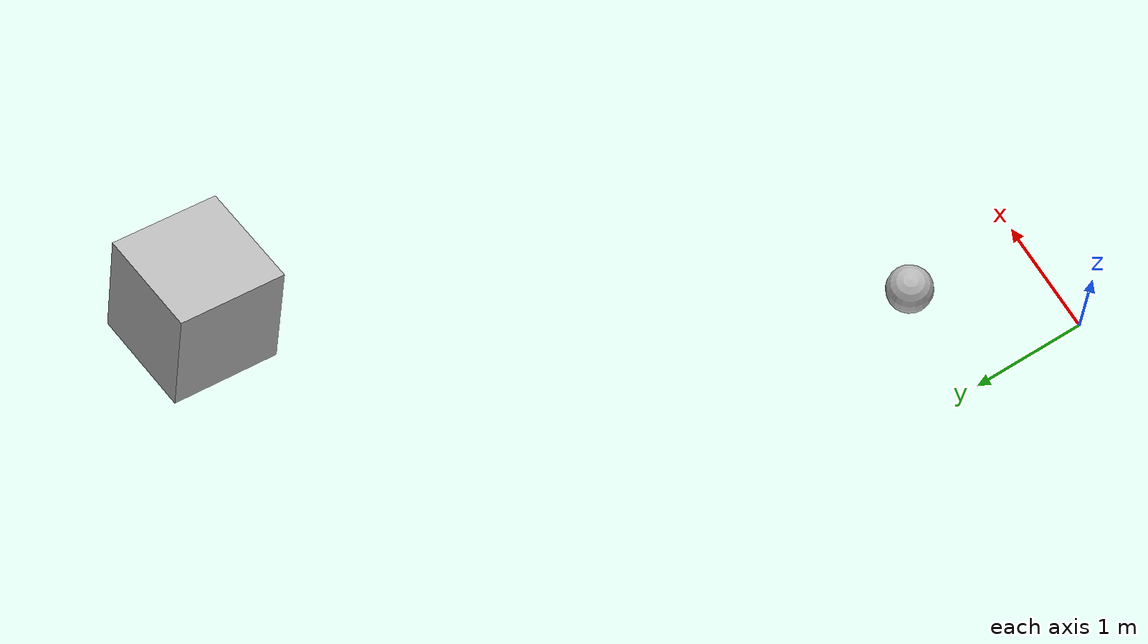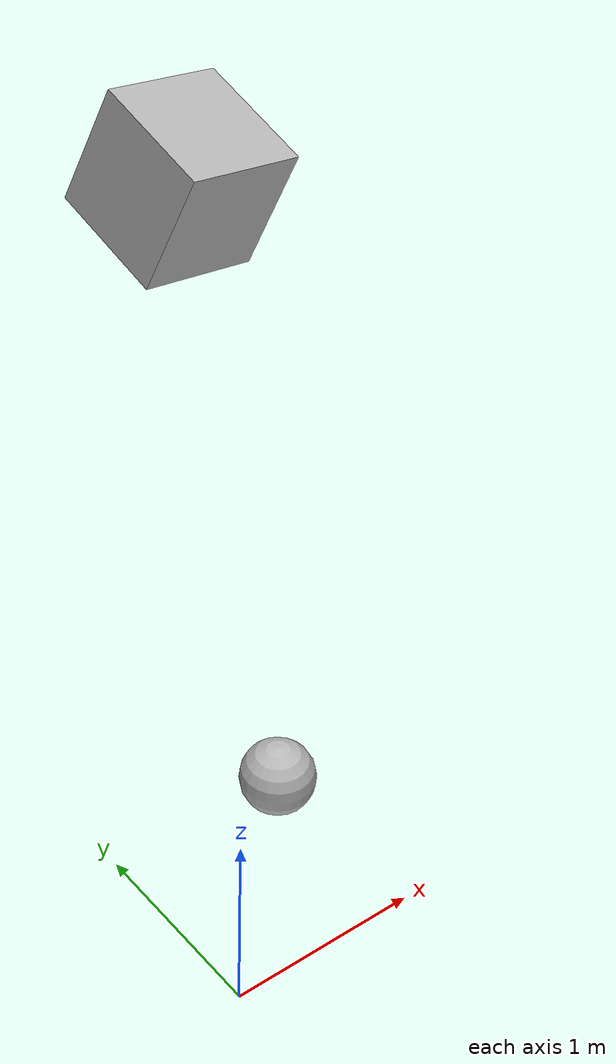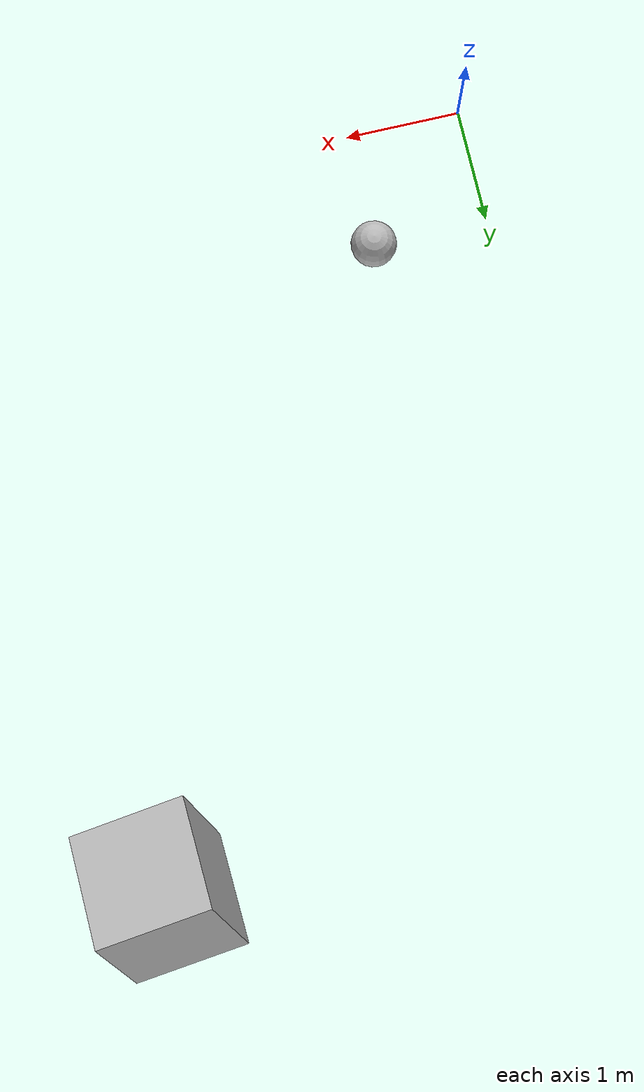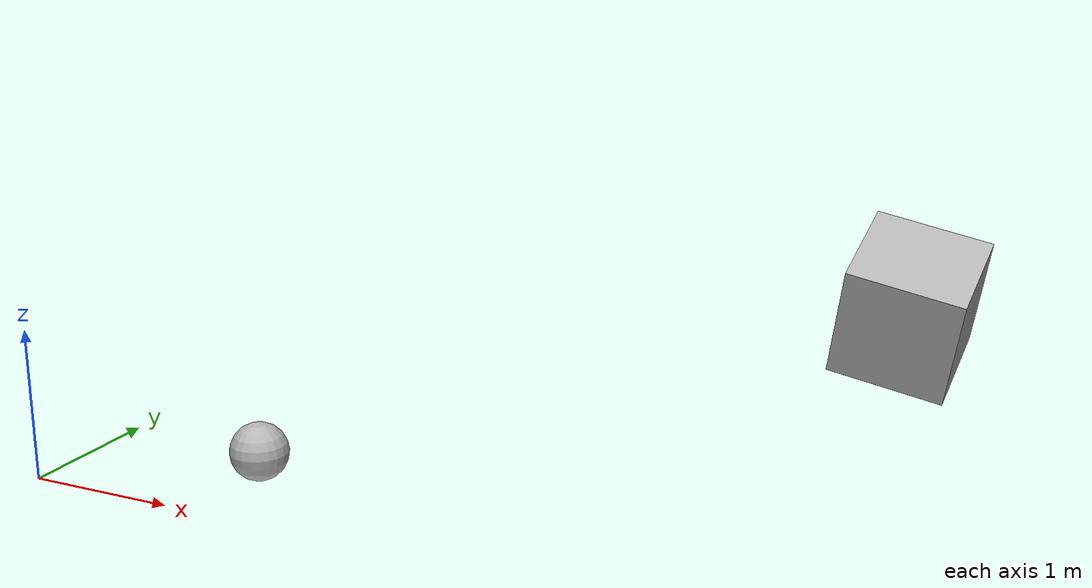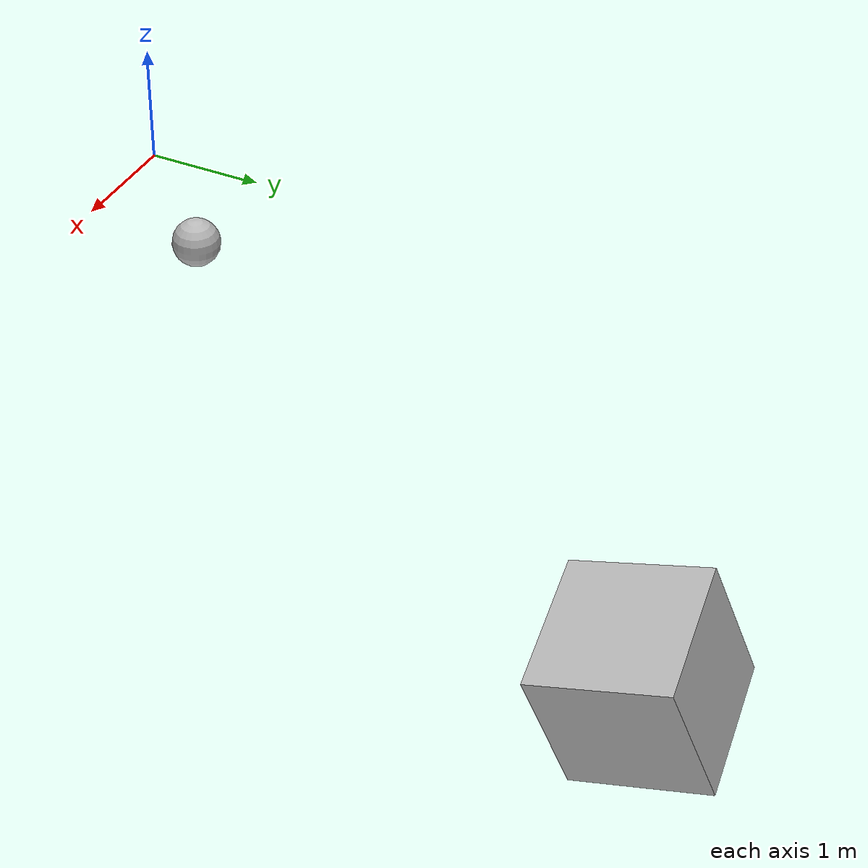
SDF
<sdf version='1.9'>
  <world name='uuv_bluerov2_heavy'>
    <physics type="ode">
      <max_step_size>0.004</max_step_size>
      <real_time_factor>1.0</real_time_factor>
      <real_time_update_rate>250</real_time_update_rate>
    </physics>
    <plugin name='gz::sim::systems::Physics' filename='gz-sim-physics-system'/>
    <plugin name='gz::sim::systems::UserCommands' filename='gz-sim-user-commands-system'/>
    <plugin name='gz::sim::systems::SceneBroadcaster' filename='gz-sim-scene-broadcaster-system'/>
    <plugin name='gz::sim::systems::Contact' filename='gz-sim-contact-system'/>
    <plugin name='gz::sim::systems::Imu' filename='gz-sim-imu-system'/>
    <plugin name='gz::sim::systems::AirPressure' filename='gz-sim-air-pressure-system'/>
    <plugin name='gz::sim::systems::ApplyLinkWrench' filename='gz-sim-apply-link-wrench-system'/>
    <plugin name='gz::sim::systems::Sensors' filename='gz-sim-sensors-system'>
      <render_engine>ogre2</render_engine>
    </plugin>
    <gui fullscreen='false'>
      <plugin name='3D View' filename='GzScene3D'>
        <gz-gui>
          <title>3D View</title>
          <property type='bool' key='showTitleBar'>0</property>
          <property type='string' key='state'>docked</property>
        </gz-gui>
        <engine>ogre2</engine>
        <scene>scene</scene>
        <ambient_light>0.5984631152222222 0.5984631152222222 0.5984631152222222</ambient_light>
        <background_color>0.8984631152222222 0.8984631152222222 0.8984631152222222</background_color>
        <camera_pose>-6 0 6 0 0.5 0</camera_pose>
      </plugin>
      <plugin name='World control' filename='WorldControl'>
        <gz-gui>
          <title>World control</title>
          <property type='bool' key='showTitleBar'>0</property>
          <property type='bool' key='resizable'>0</property>
          <property type='double' key='height'>72</property>
          <property type='double' key='width'>121</property>
          <property type='double' key='z'>1</property>
          <property type='string' key='state'>floating</property>
          <anchors target='3D View'>
            <line own='left' target='left'/>
            <line own='bottom' target='bottom'/>
          </anchors>
        </gz-gui>
        <play_pause>1</play_pause>
        <step>1</step>
        <start_paused>1</start_paused>
      </plugin>
      <plugin name='World stats' filename='WorldStats'>
        <gz-gui>
          <title>World stats</title>
          <property type='bool' key='showTitleBar'>0</property>
          <property type='bool' key='resizable'>0</property>
          <property type='double' key='height'>110</property>
          <property type='double' key='width'>290</property>
          <property type='double' key='z'>1</property>
          <property type='string' key='state'>floating</property>
          <anchors target='3D View'>
            <line own='right' target='right'/>
            <line own='bottom' target='bottom'/>
          </anchors>
        </gz-gui>
        <sim_time>1</sim_time>
        <real_time>1</real_time>
        <real_time_factor>1</real_time_factor>
        <iterations>1</iterations>
      </plugin>
      <plugin name='Entity tree' filename='EntityTree'/>
    </gui>
    <gravity>0 0 -9.8</gravity>
    <magnetic_field>6e-06 2.3e-05 -4.2e-05</magnetic_field>
    <atmosphere type='adiabatic'/>
    <scene>
      <grid>false</grid>
      <ambient>0.4 0.4 0.4 1</ambient>
      <background>0.7 0.7 0.7 1</background>
      <shadows>true</shadows>
    </scene>
    <light name='sunUTC' type='directional'>
      <pose>0 0 500 0 -0 0</pose>
      <cast_shadows>true</cast_shadows>
      <intensity>1</intensity>
      <direction>0.001 0.625 -0.78</direction>
      <diffuse>0.904 0.904 0.904 1</diffuse>
      <specular>0.271 0.271 0.271 1</specular>
      <attenuation>
        <range>2000</range>
        <linear>0</linear>
        <constant>1</constant>
        <quadratic>0</quadratic>
      </attenuation>
      <spot>
        <inner_angle>0</inner_angle>
        <outer_angle>0</outer_angle>
        <falloff>0</falloff>
      </spot>
    </light>
    <plugin
      filename="gz-sim-buoyancy-system"
      name="gz::sim::systems::Buoyancy">
      <graded_buoyancy>
        <default_density>1000</default_density>
        <density_change>
          <above_depth>0</above_depth>
          <density>1</density>
        </density_change>
      </graded_buoyancy>
        <enable>uuv_hippocampus_0</enable>
    <enable>uuv_hippocampus</enable>
      <enable>uuv_hippocampus_0::body</enable>
      <enable>uuv_hippocampus_0::body::body_collision</enable>
      <!-- enable by top level model name -->
      <enable>lighter_than_water</enable>
    </plugin>

<model name='lighter_than_water'>
      <pose>1 1 0 0 0 0</pose>
      <!-- This sphere should bob up and down. -->
      <model name="ball">
        <link name='body'>
          <pose>0 0 0 0 0 0</pose>
          <inertial>
            <mass>25</mass>
            <inertia>
              <ixx>86.28907821859966</ixx>
              <ixy>0</ixy>
              <ixz>0</ixz>
              <iyy>86.28907821859966</iyy>
              <iyz>0</iyz>
              <izz>5.026548245743671</izz>
            </inertia>
          </inertial>

          <visual name='body_visual'>
            <geometry>
              <sphere>
                <radius>0.2</radius>
              </sphere>
            </geometry>
          </visual>
          <collision name='body_collision'>
            <geometry>
              <sphere>
                <radius>0.2</radius>
              </sphere>
            </geometry>
          </collision>
        </link>
      </model>

      <!-- This box should float. -->
      <model name='box'>
        <pose>3 5 0 0.3 0.2 0.1</pose>
        <link name='body'>
          <inertial>
            <mass>200</mass>
            <inertia>
              <ixx>33.33</ixx>
              <ixy>0</ixy>
              <ixz>0</ixz>
              <iyy>33.33</iyy>
              <iyz>0</iyz>
              <izz>33.33</izz>
            </inertia>
          </inertial>

          <visual name='body_visual'>
            <geometry>
              <box>
                <size>1 1 1</size>
              </box>
            </geometry>
          </visual>
          <collision name='body_collision'>
            <geometry>
               <box>
                <size>1 1 1</size>
              </box>
            </geometry>
          </collision>
        </link>
      </model>
    </model>

  </world>
</sdf>
